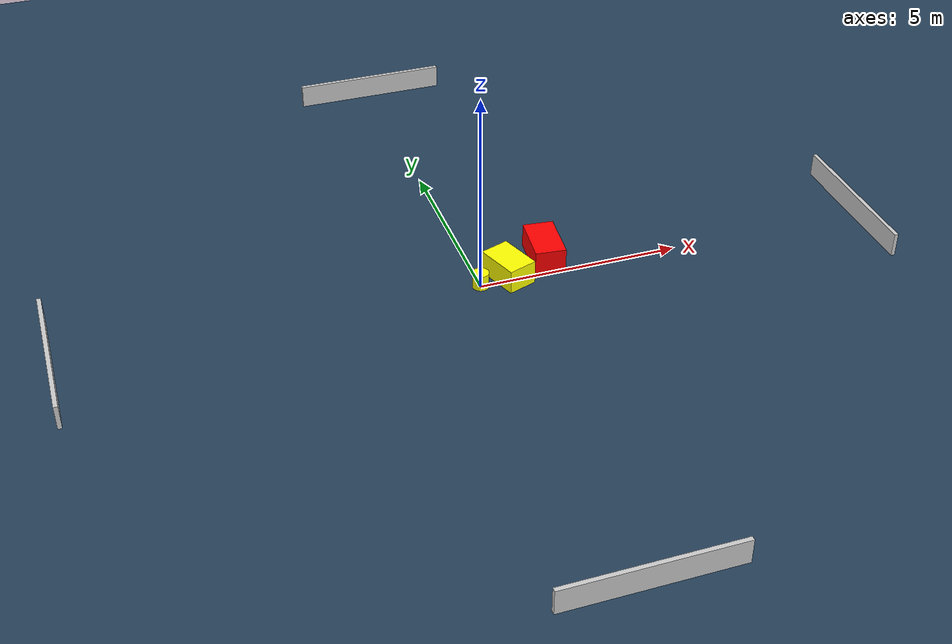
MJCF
<?xml version="1.0" ?>
<mujoco model="generated_environment">
  <option timestep="0.01" integrator="RK4" cone="elliptic"/>
  <default>
    <geom density="1"/>
  </default>
  <asset>
    <texture builtin="gradient" height="3072" name="skybox" rgb1="0.3 0.5 0.7" rgb2="0 0 0" type="skybox" width="512"/>
    <texture builtin="checker" height="300" name="groundplane" rgb1="0.2 0.3 0.4" rgb2="0.1 0.2 0.3" type="2d" width="300"/>
    <material name="groundplane" reflectance="0.2" texrepeat="5 5" texture="groundplane"/>
  </asset>
  <worldbody>
    <light dir="0 0 -1" directional="true" pos="0 0 1.5"/>
    <geom condim="3" friction="0.5 0.005 0.001" material="groundplane" name="floor" pos="0 0 0" size="0 0 0.05" type="plane"/>
    <body name="walls">
      <geom name="wall_1" condim="4" pos="-10.0 0.0 0.3" rgba="0.800000011920929 0.800000011920929 0.800000011920929 1.0" size="0.05 2.0 0.3" type="box"/>
      <geom name="wall_2" condim="4" pos="10.0 0.0 0.3" rgba="0.800000011920929 0.800000011920929 0.800000011920929 1.0" size="0.05 2.0 0.3" type="box"/>
      <geom name="wall_3" condim="4" pos="0.0 -10.0 0.3" rgba="0.800000011920929 0.800000011920929 0.800000011920929 1.0" size="2.0 0.05 0.3" type="box"/>
      <geom name="wall_4" condim="4" pos="0.0 10.0 0.3" rgba="0.800000011920929 0.800000011920929 0.800000011920929 1.0" size="2.0 0.05 0.3" type="box"/>
    </body>
    <body name="robot">
      <joint name="joint_x" type="slide" pos="0 0 0" axis="1 0 0"/>
      <joint name="joint_y" type="slide" pos="0 0 0" axis="0 1 0"/>
      <geom name="robot" type="cylinder" pos="0.0 0.0 0.2" size="0.2 0.2 0.0" mass="5.0" friction="1.0 0.005 0.0001" condim="4" rgba="1.0 1.0 0.0 1.0"/>
    </body>
    <body name="obstacle_1_movable">
      <geom name="obstacle_1_movable" condim="4" pos="0.7491005431553371 0.14425857184213361 0.3" euler="0 0 109.5896754945391" friction="0.0 0.005 0.001" rgba="1.0 1.0 0.0 1.0" size="0.5493633471818231 0.36998766938208727 0.3" type="box" mass="0.1"/>
      <joint type="free"/>
    </body>
    <body name="obstacle_2_static">
      <geom name="obstacle_2_static" condim="4" pos="1.8427681773738764 0.6362887435111437 0.3" euler="0 0 84.01949497483459" friction="0.0 0.005 0.001" rgba="1.0 0.0 0.0 1.0" size="0.6415444617954165 0.3793599402580533 0.3" type="box"/>
    </body>
  </worldbody>
  <actuator>
    <motor name="actuator_x" joint="joint_x" gear="1" ctrlrange="-1 1"/>
    <motor name="actuator_y" joint="joint_y" gear="1" ctrlrange="-1 1"/>
  </actuator>
</mujoco>
